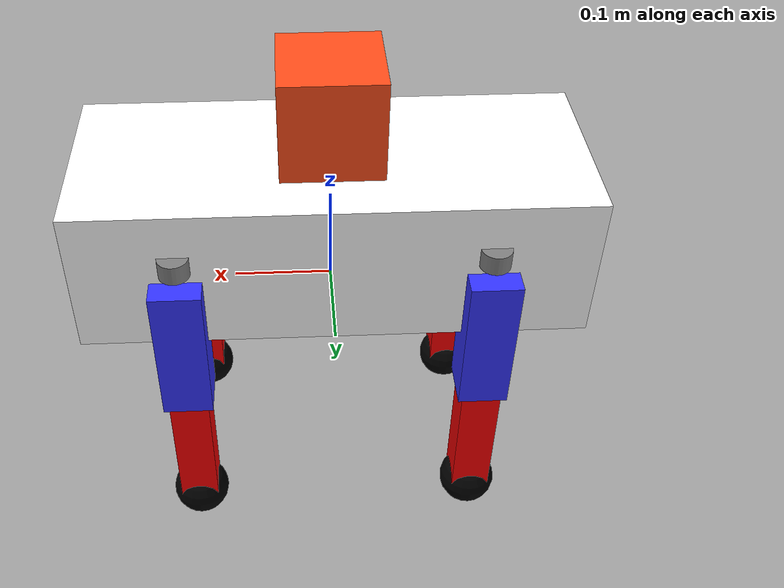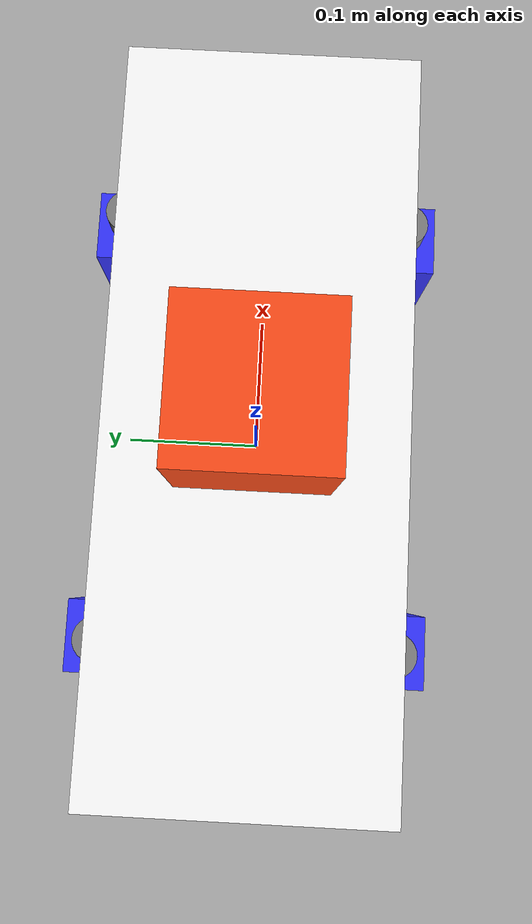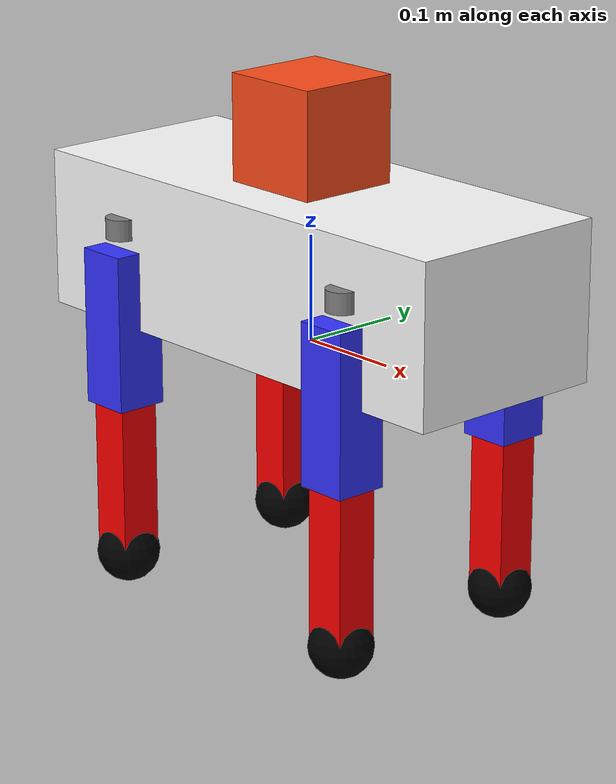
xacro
<?xml version="1.0"?>
<robot xmlns:xacro="http://www.ros.org/wiki/xacro">

    <material name="white">
        <color rgba="1 1 1 1" />
    </material>
    <material name="orange">
        <color rgba="1 0.3 0.1 1" />
    </material>
    <material name="blue">
        <color rgba="0.2 0.2 1 1" />
    </material>
    <material name="black">
        <color rgba="0 0 0 1" />
    </material>
    <material name="red">
        <color rgba="1 0 0 1" />
    </material>

    <material name="grey">
        <color rgba="0.5 0.5 0.5 1" />
    </material>

    <!-- BASE LINK -->
    <link name="base_link"></link>

    <!-- CHASSIS LINK -->
    <joint name="chassis_joint" type="fixed">
        <parent link="base_link" />
        <child link="chassis" />
         <origin xyz="0 0 0" />
    </joint>

    <link name="chassis">
        <visual>
            <origin xyz="0 0 0.075" />
            <geometry>
               <box size="0.5 0.2 0.15" />
            </geometry>
            <material name="white" />
        </visual>
        <collision>
            <origin xyz="0.15 0 0.075" />
            <geometry>
                <box size="0.5 0.2 0.15" />
            </geometry>
        </collision>
        <xacro:inertial_box mass="0.5" x="0.5" y="0.2" z="0.15">
             <origin xyz="0 0 0.075" rpy="0 0 0" />
        </xacro:inertial_box>
    </link>

    <!-- FL (Front Left) LEG -->

    <!-- IMPORT LEG PATTERN -->
    <xacro:include filename="$(find first_robot)/description/leg_block.xacro"/>

    <!-- Gọi 4 chân: FL, FR, RL, RR -->
    <xacro:leg prefix="left_front"  x=" 0.15" y=" 0.10" />
    <xacro:leg prefix="right_front" x=" 0.15" y="-0.10" />
    <xacro:leg prefix="left_rear"   x="-0.15" y=" 0.10" />
    <xacro:leg prefix="right_rear"  x="-0.15" y="-0.10" />

    <!-- HEAD LINK -->
    <joint name="head_joint" type="fixed">
        <parent link="base_link" />
        <child link="head" />
        <origin xyz="0 0 0.15" />
    </joint>
    <link name="head">
        <visual>
            <origin xyz="0 0 0.05" />
            <geometry>
                <box size="0.1 0.1 0.1" />
            </geometry>
            <material name="orange" />
        </visual>
        <collision>
            <origin xyz="0 0 0.05" />
            <geometry>
                <box size="0.1 0.1 0.1" />
            </geometry>
        </collision>
        <xacro:inertial_box mass="0.2" x="0.1" y="0.1" z="0.1">
            <origin xyz="0 0 0.05" rpy="0 0 0" />
        </xacro:inertial_box>
    </link>

</robot>

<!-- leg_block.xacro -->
<robot xmlns:xacro="http://ros.org/wiki/xacro">
<xacro:macro name="leg" params="prefix x y">

  <!-- Macro định nghĩa phần inertial (khối lượng, khối tâm, quán tính) -->
  <xacro:macro name="inertial_box_leg" params="mass box_size">
    <inertial>
      <mass value="${mass}" />
      <origin xyz="0 0 0" rpy="0 0 0" />
      <inertia
        ixx="${(1/12.0)*mass*(pow(box_size[1],2)+pow(box_size[2],2))}"
        iyy="${(1/12.0)*mass*(pow(box_size[0],2)+pow(box_size[2],2))}"
        izz="${(1/12.0)*mass*(pow(box_size[0],2)+pow(box_size[1],2))}"
        ixy="0.0" ixz="0.0" iyz="0.0" />
    </inertial>
  </xacro:macro>

  <!-- Hip Motor Link -->
  <link name="${prefix}_hip_motor_link">
    <visual>
      <origin xyz="0 0 0.02"/>
      <geometry>
        <cylinder length="0.02" radius="0.015"/>
      </geometry>
      <material name="grey"/>
    </visual>
    <collision>
      <origin xyz="0 0 0.02"/>
      <geometry>
        <cylinder length="0.02" radius="0.015"/>
      </geometry>
    </collision>
    <inertial>
      <mass value="0.05"/>
      <inertia ixx="0.00001" ixy="0.0" ixz="0.0" iyy="0.00001" iyz="0.0" izz="0.00001"/>
    </inertial>
  </link>

  <!-- Fixed joint gắn hip motor vào chassis -->
  <joint name="${prefix}_hip_motor_fixed" type="fixed">
    <parent link="chassis"/>
    <child link="${prefix}_hip_motor_link"/>
    <origin xyz="${x} ${y} 0.075"/>
  </joint>

  <!-- Hip Joint -->
  <joint name="${prefix}_hip_joint" type="revolute">
    <parent link="${prefix}_hip_motor_link"/>
    <child link="${prefix}_thigh"/>
    <origin xyz="0 0 0"/>
    <axis xyz="0 1 0"/>
    <limit effort="5" velocity="2.0" lower="-1.57" upper="1.57"/>
  </joint>

  <!-- Thigh Link -->
  <link name="${prefix}_thigh">
    <visual>
      <origin xyz="0 0 -0.075"/>
      <geometry>
        <box size="0.05 0.05 0.15"/>
      </geometry>
      <material name="blue"/>
    </visual>
    <collision>
      <origin xyz="0 0 -0.075"/>
      <geometry>
        <box size="0.05 0.05 0.15"/>
      </geometry>
    </collision>
    <xacro:inertial_box_leg mass="0.2" box_size="${[0.05, 0.05, 0.15]}"/>

  </link>

  <!-- Knee Motor Link -->
  <link name="${prefix}_knee_motor_link">
    <visual>
      <origin xyz="0 0 -0.01"/>
      <geometry>
        <cylinder length="0.02" radius="0.012"/>
      </geometry>
      <material name="grey"/>
    </visual>
    <collision>
      <origin xyz="0 0 -0.01"/>
      <geometry>
        <cylinder length="0.02" radius="0.012"/>
      </geometry>
    </collision>
    <inertial>
      <mass value="0.03"/>
      <inertia ixx="0.00001" ixy="0.0" ixz="0.0" iyy="0.00001" iyz="0.0" izz="0.00001"/>
    </inertial>
  </link>

  <!-- Fixed joint gắn knee motor vào thigh -->
  <joint name="${prefix}_knee_motor_fixed" type="fixed">
    <parent link="${prefix}_thigh"/>
    <child link="${prefix}_knee_motor_link"/>
    <origin xyz="0 0 -0.15"/>
  </joint>

  <!-- Knee Joint -->
  <joint name="${prefix}_knee_joint" type="revolute">
    <parent link="${prefix}_knee_motor_link"/>
    <child link="${prefix}_shank"/>
    <origin xyz="0 0 0"/>
    <axis xyz="0 1 0"/>
    <limit effort="5" velocity="2.0" lower="-1.57" upper="1.57"/>
  </joint>

  <!-- Shank Link -->
  <link name="${prefix}_shank">
    <visual>
      <origin xyz="0 0 -0.075"/>
      <geometry>
        <box size="0.04 0.04 0.15"/>
      </geometry>
      <material name="red"/>
    </visual>
    <collision>
      <origin xyz="0 0 -0.075"/>
      <geometry>
        <box size="0.04 0.04 0.15"/>
      </geometry>
    </collision>
    <xacro:inertial_box_leg mass="0.2" box_size="${[0.04, 0.04, 0.15]}"/>

  </link>

  <!-- Ankle Motor Link -->
  <link name="${prefix}_ankle_motor_link">
    <visual>
      <origin xyz="0 0 -0.01"/>
      <geometry>
        <cylinder length="0.02" radius="0.012"/>
      </geometry>
      <material name="grey"/>
    </visual>
    <collision>
      <origin xyz="0 0 -0.01"/>
      <geometry>
        <cylinder length="0.02" radius="0.012"/>
      </geometry>
    </collision>
    <inertial>
      <mass value="0.03"/>
      <inertia ixx="0.00001" ixy="0.0" ixz="0.0" iyy="0.00001" iyz="0.0" izz="0.00001"/>
    </inertial>
  </link>

  <!-- Fixed joint gắn ankle motor vào shank -->
  <joint name="${prefix}_ankle_motor_fixed" type="fixed">
    <parent link="${prefix}_shank"/>
    <child link="${prefix}_ankle_motor_link"/>
    <origin xyz="0 0 -0.15"/>
  </joint>

  <!-- Ankle Joint -->
  <joint name="${prefix}_ankle_joint" type="revolute">
    <parent link="${prefix}_ankle_motor_link"/>
    <child link="${prefix}_foot"/>
    <origin xyz="0 0 0"/>
    <axis xyz="0 1 0"/>
    <limit effort="5" velocity="2.0" lower="-1.57" upper="1.57"/>
  </joint>

  <!-- Foot Link -->
  <link name="${prefix}_foot">
    <visual>
      <geometry>
        <sphere radius="0.03"/>
      </geometry>
      <material name="black"/>
    </visual>
    <collision>
      <geometry>
        <sphere radius="0.03"/>
      </geometry>
    </collision>
    <xacro:inertial_sphere mass="0.1" radius="0.03">
       <origin xyz="0 0 0" rpy="0 0 0" />
    </xacro:inertial_sphere>
  </link>

  <!-- IMPORT LEG PATTERN -->
  <xacro:include filename="$(find first_robot)/description/transmission_block.xacro"/>
  <xacro:transmission_block prefix="left_front"/>
  <xacro:transmission_block prefix="right_front"/>
  <xacro:transmission_block prefix="left_rear"/>
  <xacro:transmission_block prefix="right_rear"/>

</xacro:macro>
</robot>
